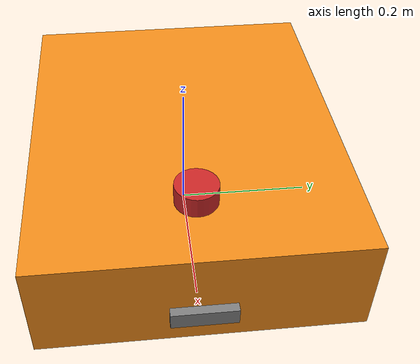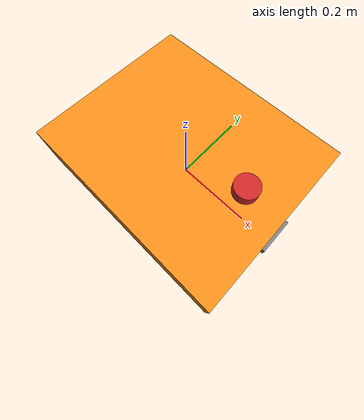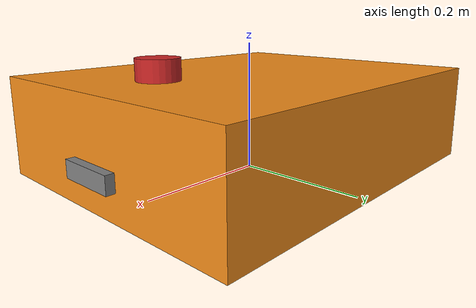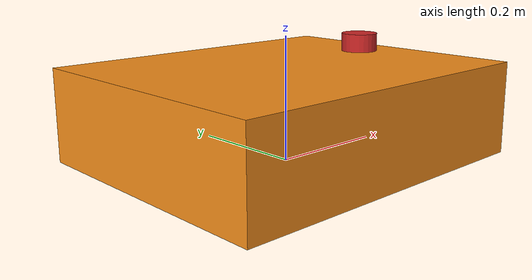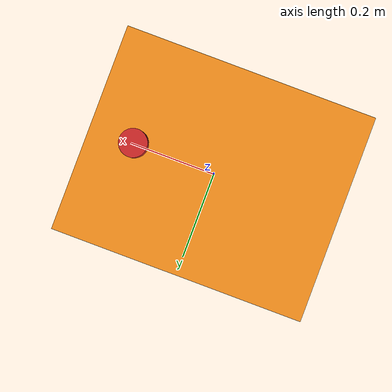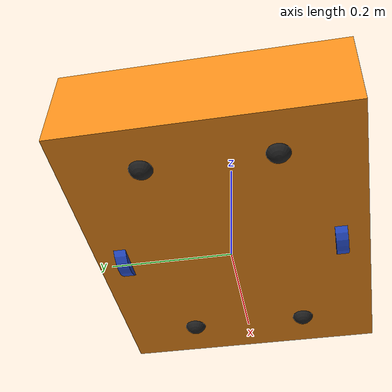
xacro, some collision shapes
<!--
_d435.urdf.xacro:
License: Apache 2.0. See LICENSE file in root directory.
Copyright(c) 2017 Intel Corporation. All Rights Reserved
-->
<?xml version="1.0"?>
<robot xmlns:xacro="http://www.ros.org/wiki/xacro" name="mobile_robot" >

  <xacro:arg name="use_nominal_extrinsics" default="false"/>
  <xacro:arg name="add_plug" default="false" />
  <xacro:arg name="use_mesh" default="true" />

  <!-- Import Rviz colors -->
  <xacro:include filename="$(find controller)/xacro/materials.xacro" />

  <!-- Robot Body -->
  <xacro:include filename="$(find controller)/xacro/model/robot_body.xacro"/>
  <xacro:robot_body name="chassis" parent="base_link" meshes="package://gazebo_plugins/test/controller/meshes/model"/>

  <!-- Laser -->
  <xacro:include filename="$(find controller)/xacro/laser/hokuyo.xacro"/>
  <xacro:laser name="laser" parent="base_link" xyz="0.175 0 0.175" rpy="0 0 -1.122" meshes="package://gazebo_plugins/test/drl/meshes/laser"/>

</robot>

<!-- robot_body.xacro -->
<robot xmlns:xacro="http://www.ros.org/wiki/xacro">

  <xacro:include filename="inertia_tensors.xacro"/>
  <xacro:include filename="robot_chassis.xacro"/>

  <xacro:include filename="robot_wheel_left.xacro"/>
  <xacro:include filename="robot_wheel_right.xacro"/>
  <xacro:include filename="robot_swivel.xacro"/>

  <xacro:include filename="_d435.urdf.xacro"/>
  <xacro:include filename="robot_plugins.xacro"/>

  <xacro:macro name="robot_body" params="name parent meshes">

    <!-- base_link -->
    <link name="${parent}"/>

    <!-- Chassis -->
    <xacro:base_chassis name="${name}" parent="base_link" xyz="0 0 0" rpy="0 0 0"  meshes="${meshes}"/>

    <!-- Wheels -->
    <xacro:base_wheel_left parent="${name}"  xyz="0  0.15 0.09" rpy="0 0 0" radius="0.09" meshes="${meshes}"/>
    <xacro:base_wheel_right  parent="${name}"  xyz="0 -0.15 0.09" rpy="0 0 0" radius="0.09" meshes="${meshes}"/>
    <xacro:base_swivel parent="${name}"  xyz="-0.185 0 0.055" rpy="0 0 0" meshes="${meshes}"/>

    <!-- Depth Camera -->
    <xacro:sensor_d435 name="camera" topics_ns="camera" parent="base_link" >
      <origin xyz="0.275 0 0.045" rpy="0 0 0" />
    </xacro:sensor_d435>
    <!-- Motor plugin -->
    <xacro:robot_diff_drive />

    <!-- Joints plugin -->
    <xacro:robot_joints_state_publisher />

  </xacro:macro>
</robot>

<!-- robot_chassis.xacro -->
<robot xmlns:xacro="http://ros.org/wiki/xacro">
  <property name="M_PI" value="3.1415926535897931" />
  <xacro:include filename="inertial_macros.xacro"/>

  <xacro:property name="half_pi_const" value="1.5707963" />
<xacro:property name="body_link_x_dim" value="0.55" />
<xacro:property name="body_link_y_dim" value="0.45" />
<xacro:property name="body_link_z_dim" value="0.09" />
  <xacro:macro name="base_chassis" params="name parent xyz rpy meshes">

  <!-- Chassis -->
  <joint name="${parent}_${name}_joint" type="fixed">
    <origin xyz="0.0 0 0" />
    <parent link="${parent}"/>
    <child link="chassis"/>
  </joint>

<link name="chassis">
    <visual>
        <origin xyz="0.0 0 0.08" rpy="0 0 0"/>
        <geometry>
            <box size="0.55 0.45 0.15"/>
        </geometry>
          <material name="orange"/>
    </visual>
    <collision>
        <origin xyz="0.0 0 0.08" rpy="0 0 0"/>
        <geometry>
            <box size="0.55 0.45 0.15"/>
        </geometry>
    </collision>
    <xacro:inertial_box mass="15" x="0.55" y="0.45" z="0.15">
        <origin xyz="0.0 0 0.08" rpy="0 0 0"/>
    </xacro:inertial_box>
</link>

    <gazebo reference="chassis">
        <material>Gazebo/Orange</material>
    </gazebo>
  </xacro:macro>

</robot>

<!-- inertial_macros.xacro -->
<robot xmlns:xacro="http://www.ros.org/wiki/xacro" >

    <!-- Specify some standard inertial calculations https://en.wikipedia.org/wiki/List_of_moments_of_inertia -->
    <!-- These make use of xacro's mathematical functionality -->

    <xacro:macro name="inertial_sphere" params="mass radius *origin">
        <inertial>
            <xacro:insert_block name="origin"/>
            <mass value="${mass}" />
            <inertia ixx="${(2/5) * mass * (radius*radius)}" ixy="0.0" ixz="0.0"
                    iyy="${(2/5) * mass * (radius*radius)}" iyz="0.0"
                    izz="${(2/5) * mass * (radius*radius)}" />
        </inertial>
    </xacro:macro>

    <xacro:macro name="inertial_box" params="mass x y z *origin">
        <inertial>
            <xacro:insert_block name="origin"/>
            <mass value="${mass}" />
            <inertia ixx="${(1/12) * mass * (y*y+z*z)}" ixy="0.0" ixz="0.0"
                    iyy="${(1/12) * mass * (x*x+z*z)}" iyz="0.0"
                    izz="${(1/12) * mass * (x*x+y*y)}" />
        </inertial>
    </xacro:macro>

    <xacro:macro name="inertial_cylinder" params="mass length radius *origin">
        <inertial>
            <xacro:insert_block name="origin"/>
            <mass value="${mass}" />
            <inertia ixx="${(1/12) * mass * (3*radius*radius + length*length)}" ixy="0.0" ixz="0.0"
                    iyy="${(1/12) * mass * (3*radius*radius + length*length)}" iyz="0.0"
                    izz="${(1/2) * mass * (radius*radius)}" />
        </inertial>
    </xacro:macro>

</robot>

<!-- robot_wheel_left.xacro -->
<robot
  xmlns:xacro="http://ros.org/wiki/xacro">
  <property name="M_PI" value="3.1415926535897931" />
  <xacro:property name="wheel_link_radius" value="0.05" />
  <xacro:property name="wheel_link_length" value="0.02" />
  <xacro:property name="wheel_link_x_location" value="0.12" />
  <xacro:property name="sphere_radius" value="0.02" />
  <xacro:property name="sphere_joint_y" value="-0.15" />
  <xacro:property name="z_sphere" value="-0.017" />

  <xacro:property name="pi_const" value="3.1415926535898" />
  <xacro:property name="half_pi_const" value="1.5707963" />
  <xacro:property name="chassis_mass" value="10.0"/>
<xacro:property name="wheel_mass" value="0.2"/>
<xacro:property name="caster_wheel_mass" value="0.01"/>
 <xacro:include filename="inertial_macros.xacro"/>

  <xacro:macro name="base_wheel_left" params=" parent xyz rpy radius meshes">
  <!-- Hubcap -->

<joint name="left_wheel_joint" type="continuous">
    <parent link="base_link"/>
    <child link="left_wheel"/>
    <origin xyz="0 0.18 0.0415" rpy="-${pi/2} 0 0"/>
    <axis xyz="0 0 1"/>
</joint>

<link name="left_wheel">
    <visual>
        <geometry>
            <cylinder length="0.02" radius="0.05" />
        </geometry>
        <material name="blue"/>
    </visual>
	<collision>
		<geometry>
            <cylinder length="0.02" radius="0.05" />
        </geometry>
        <material name="blue"/>
	</collision>
    <xacro:inertial_cylinder mass="0.1" length="0.02" radius="0.05">
        <origin xyz="0 0 0" rpy="0 0 0"/>
    </xacro:inertial_cylinder>
</link>
    <gazebo reference="left_wheel">
        <material>Gazebo/Blue</material>
    </gazebo>
  </xacro:macro>

</robot>

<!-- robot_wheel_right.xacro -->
<robot
  xmlns:xacro="http://ros.org/wiki/xacro">
  <property name="M_PI" value="3.1415926535897931" />
  <xacro:include filename="inertial_macros.xacro"/>
  <xacro:property name="wheel_link_radius" value="0.05" />
  <xacro:property name="wheel_link_length" value="0.02" />
  <xacro:property name="wheel_link_x_location" value="0.12" />
  <xacro:property name="sphere_radius" value="0.02" />
  <xacro:property name="sphere_joint_y" value="-0.15" />
  <xacro:property name="z_sphere" value="-0.017" />
  <xacro:property name="pi_const" value="3.1415926535898" />
  <xacro:property name="half_pi_const" value="1.5707963" />
<xacro:property name="chassis_mass" value="10.0"/>
<xacro:property name="wheel_mass" value="0.2"/>
<xacro:property name="caster_wheel_mass" value="0.01"/>

  <xacro:macro name="base_wheel_right" params=" parent xyz rpy radius meshes">

  <!-- Hubcap -->
<joint name="right_wheel_joint" type="continuous">
    <parent link="base_link"/>
    <child link="right_wheel"/>
    <origin xyz="0 -0.18 0.0415" rpy="${pi/2} 0 0"/>
    <axis xyz="0 0 -1"/>
</joint>

  <link name="right_wheel">
    <visual>
        <geometry>
            <cylinder length="0.02" radius="0.05" />
        </geometry>
        <material name="blue"/>
    </visual>
	<collision>
		<geometry>
            <cylinder length="0.02" radius="0.05" />
        </geometry>
        <material name="blue"/>
	</collision>
    <xacro:inertial_cylinder mass="0.1" length="0.02" radius="0.05">
        <origin xyz="0 0 0" rpy="0 0 0"/>
    </xacro:inertial_cylinder>
</link>
    <gazebo reference="right_wheel">
        <material>Gazebo/Blue</material>
    </gazebo>

  </xacro:macro>

</robot>

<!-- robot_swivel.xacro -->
<robot xmlns:xacro="http://ros.org/wiki/xacro">
  <property name="M_PI" value="3.1415926535897931" />

  <xacro:macro name="base_swivel" params="parent xyz rpy meshes">
<xacro:property name="sphere_radius_2" value="0.02" />
<xacro:property name="sphere_joint_y_2" value="0.15" />
<xacro:property name="z_sphere_2" value="-0.01" />

<xacro:property name="chassis_mass" value="10.0"/>
<xacro:property name="wheel_mass" value="0.2"/>
<xacro:property name="caster_wheel_mass" value="0.01"/>

<xacro:property name="sphere_radius" value="0.02" />
<xacro:property name="sphere_joint_y" value="-0.15" />
<xacro:property name="z_sphere" value="-0.01" />

<xacro:property name="pi_const" value="3.1415926535898" />
<xacro:property name="half_pi_const" value="1.5707963" />
<joint name="caster_wheel_joint" type="fixed">
    <parent link="chassis"/>
    <child link="caster_wheel"/>
    <origin xyz="0.2 -0.1 0.0125" rpy="0 0 0"/>
</joint>

<link name="caster_wheel">
    <visual>
        <geometry>
            <sphere radius="0.02" />
        </geometry>
        <material name="black"/>
    </visual>
	<collision>
        <geometry>
            <sphere radius="0.02" />
        </geometry>
        <material name="black"/>
    </collision>
    <xacro:inertial_sphere mass="0.1" radius="0.02">
        <origin xyz="0 0 0" rpy="0 0 0"/>
    </xacro:inertial_sphere>
</link>
<gazebo reference="caster_wheel">
    <material>Gazebo/Black</material>
    <mu1 value="0.001"/>
    <mu2 value="0.001"/>
</gazebo>

<joint name="caster_wheel_joint2" type="fixed">
    <parent link="chassis"/>
    <child link="caster_wheel2"/>
    <origin xyz="0.2 0.1 0.0125" rpy="0 0 0"/>
</joint>

<link name="caster_wheel2">
    <visual>
        <geometry>
            <sphere radius="0.02" />
        </geometry>
        <material name="black"/>
    </visual>
	<collision>
        <geometry>
            <sphere radius="0.02" />
        </geometry>
        <material name="black"/>
    </collision>
    <xacro:inertial_sphere mass="0.1" radius="0.02">
        <origin xyz="0 0 0" rpy="0 0 0"/>
    </xacro:inertial_sphere>
</link>
<gazebo reference="caster_wheel2">
    <material>Gazebo/Black</material>
    <mu1 value="0.001"/>
    <mu2 value="0.001"/>
</gazebo>

<joint name="caster_wheel_joint1" type="fixed">
    <parent link="chassis"/>
    <child link="caster_wheel1"/>
    <origin xyz="-0.2 -0.1 0.0125" rpy="0 0 0"/>
</joint>

<link name="caster_wheel1">
    <visual>
        <geometry>
            <sphere radius="0.02" />
        </geometry>
        <material name="black"/>
    </visual>
	<collision>
        <geometry>
            <sphere radius="0.02" />
        </geometry>
        <material name="black"/>
    </collision>
    <xacro:inertial_sphere mass="0.1" radius="0.02">
        <origin xyz="0 0 0" rpy="0 0 0"/>
    </xacro:inertial_sphere>
</link>
<gazebo reference="caster_wheel1">
    <material>Gazebo/Black</material>
    <mu1 value="0.001"/>
    <mu2 value="0.001"/>
</gazebo>

<joint name="caster_wheel_joint3" type="fixed">
    <parent link="chassis"/>
    <child link="caster_wheel3"/>
    <origin xyz="-0.2 0.1 0.0125" rpy="0 0 0"/>
</joint>

<link name="caster_wheel3">
    <visual>
        <geometry>
            <sphere radius="0.02" />
        </geometry>
        <material name="black"/>
    </visual>
	<collision>
        <geometry>
            <sphere radius="0.02" />
        </geometry>
        <material name="black"/>
    </collision>
    <xacro:inertial_sphere mass="0.1" radius="0.02">
        <origin xyz="0 0 0" rpy="0 0 0"/>
    </xacro:inertial_sphere>
</link>
<gazebo reference="caster_wheel3">
    <material>Gazebo/Black</material>
    <mu1 value="0.001"/>
    <mu2 value="0.001"/>
</gazebo>

  </xacro:macro>

</robot>

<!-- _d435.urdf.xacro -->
<robot name="sensor_d435" xmlns:xacro="http://ros.org/wiki/xacro">

  <xacro:macro name="sensor_d435" params="parent
                                          name:=camera
                                          topics_ns:=camera
                                          align_depth:=true
                                          enable_pointCloud:=true

                                          clip_distance:=-1.0
                                          depth_width:=1280
                                          depth_height:=720
                                          depth_fps:=30

                                          infra_width:=640
                                          infra_height:=480
                                          infra_fps:=30

                                          color_width:=1920
                                          color_height:=1080
                                          color_fps:=30

                                          visualize:=false
                                          *origin">
    <xacro:property name="M_PI" value="3.1415926535897931"/>

    <!-- The following values are approximate, and the camera node
     publishing TF values with actual calibrated camera extrinsic values -->
    <xacro:property name="d435_cam_depth_to_left_ir_offset" value="0.0"/>
    <xacro:property name="d435_cam_depth_to_right_ir_offset" value="-0.050"/>
    <xacro:property name="d435_cam_depth_to_color_offset" value="0.015"/>

    <!-- The following values model the aluminum peripherial case for the
  	D435 camera, with the camera joint represented by the actual
  	peripherial camera tripod mount -->
    <xacro:property name="d435_cam_width" value="0.090"/>
    <xacro:property name="d435_cam_height" value="0.025"/>
    <xacro:property name="d435_cam_depth" value="0.02505"/>
    <xacro:property name="d435_cam_mount_from_center_offset" value="0.0149"/>

    <!-- The following offset is relative the the physical D435 camera peripherial
  	camera tripod mount -->
    <xacro:property name="d435_cam_depth_px" value="${d435_cam_mount_from_center_offset}"/>
    <xacro:property name="d435_cam_depth_py" value="0.0175"/>
    <xacro:property name="d435_cam_depth_pz" value="${d435_cam_height/2}"/>

    <material name="${name}_aluminum">
	  <color rgba="0.5 0.5 0.5 1"/>
    </material>

    <!-- camera body, with origin at bottom screw mount -->
    <joint name="${name}_joint" type="fixed">
      <xacro:insert_block name="origin"/>
      <parent link="${parent}"/>
      <child link="${name}_bottom_screw_frame"/>
    </joint>
    <link name="${name}_bottom_screw_frame"/>

    <joint name="${name}_link_joint" type="fixed">
      <origin xyz="0 ${d435_cam_depth_py} ${d435_cam_depth_pz}" rpy="0 0 0"/>
      <parent link="${name}_bottom_screw_frame"/>
      <child link="${name}_link"/>
    </joint>

    <link name="${name}_link">
      <visual>
      <origin xyz="${d435_cam_mount_from_center_offset} ${-d435_cam_depth_py} 0" rpy="${M_PI/2} 0 ${M_PI/2}"/>
        <geometry>
          <mesh filename="package://realsense2_description/meshes/d435.dae"/>
        </geometry>
        <material name="${name}_aluminum"/>
      </visual>
      <collision>
        <origin xyz="0 ${-d435_cam_depth_py} 0" rpy="0 0 0"/>
        <geometry>
        <box size="${d435_cam_depth} ${d435_cam_width} ${d435_cam_height}"/>
        </geometry>
      </collision>
      <inertial>
        <!-- The following are not reliable values, and should not be used for modeling -->
        <mass value="0.564"/>
        <origin xyz="0 0 0"/>
        <inertia ixx="0.003881243" ixy="0.0" ixz="0.0" iyy="0.000498940" iyz="0.0" izz="0.003879257"/>
      </inertial>
    </link>

    <!-- camera depth joints and links -->
    <joint name="${name}_depth_joint" type="fixed">
      <origin xyz="0 0 0" rpy="0 0 0"/>
      <parent link="${name}_link"/>
      <child link="${name}_depth_frame"/>
    </joint>
    <link name="${name}_depth_frame"/>

    <joint name="${name}_depth_optical_joint" type="fixed">
      <origin xyz="0 0 0" rpy="${-M_PI/2} 0 ${-M_PI/2}"/>
      <parent link="${name}_depth_frame"/>
      <child link="${name}_depth_optical_frame"/>
    </joint>
    <link name="${name}_depth_optical_frame"/>

    <!-- camera left IR joints and links -->
    <joint name="${name}_left_ir_joint" type="fixed">
      <origin xyz="0 ${d435_cam_depth_to_left_ir_offset} 0" rpy="0 0 0"/>
      <parent link="${name}_depth_frame"/>
      <child link="${name}_left_ir_frame"/>
    </joint>
    <link name="${name}_left_ir_frame"/>

    <joint name="${name}_left_ir_optical_joint" type="fixed">
      <origin xyz="0 0 0" rpy="${-M_PI/2} 0 ${-M_PI/2}"/>
      <parent link="${name}_left_ir_frame"/>
      <child link="${name}_left_ir_optical_frame"/>
    </joint>
    <link name="${name}_left_ir_optical_frame"/>

    <!-- camera right IR joints and links -->
    <joint name="${name}_right_ir_joint" type="fixed">
      <origin xyz="0 ${d435_cam_depth_to_right_ir_offset} 0" rpy="0 0 0"/>
      <parent link="${name}_depth_frame"/>
      <child link="${name}_right_ir_frame"/>
    </joint>
    <link name="${name}_right_ir_frame"/>

    <joint name="${name}_right_ir_optical_joint" type="fixed">
      <origin xyz="0 0 0" rpy="${-M_PI/2} 0 ${-M_PI/2}"/>
      <parent link="${name}_right_ir_frame"/>
      <child link="${name}_right_ir_optical_frame"/>
    </joint>
    <link name="${name}_right_ir_optical_frame"/>

    <!-- camera color joints and links -->
    <joint name="${name}_color_joint" type="fixed">
      <origin xyz="0 ${d435_cam_depth_to_color_offset} 0" rpy="0 0 0"/>
      <parent link="${name}_depth_frame"/>
      <child link="${name}_color_frame"/>
    </joint>
    <link name="${name}_color_frame"/>

    <joint name="${name}_color_optical_joint" type="fixed">
      <origin xyz="0 0 0" rpy="${-M_PI/2} 0 ${-M_PI/2}"/>
      <parent link="${name}_color_frame"/>
      <child link="${name}_color_optical_frame"/>
    </joint>
    <link name="${name}_color_optical_frame"/>
  </xacro:macro>
</robot>

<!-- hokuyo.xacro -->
<robot xmlns:xacro="http://www.ros.org/wiki/xacro">

<!-- Front Laser -->
<xacro:macro name="laser" params="name parent xyz rpy meshes" >

  <joint name="${parent}_${name}_joint" type="fixed">
      <axis xyz="0 0 1" />
      <origin xyz="${xyz}" rpy="${rpy}"/>
      <parent link="${parent}"/>
      <child link="${name}"/>
    </joint>

    <link name="${name}">
      <collision>
        <origin xyz="0 0 0" rpy="0 0 0"/>
        <geometry>
          <box size="0.1 0.1 0.1"/>
        </geometry>
      </collision>
      <visual>
        <origin xyz="0 0 0" rpy="0 0 0"/>
        <geometry>
          <cylinder radius="0.03" length="0.03"/>
        </geometry>
        <material name="red"/>
      </visual>
      <inertial>
        <mass value="1e-5" />
        <origin xyz="0 0 0" rpy="0 0 0"/>
        <inertia ixx="1e-6" ixy="0" ixz="0" iyy="1e-6" iyz="0" izz="1e-6" />
      </inertial>
    </link>

    <gazebo reference="${name}">
        <sensor name="laser" type="ray">
        <pose>0 0 0 0 0 0</pose>
          <ray>
            <scan>
              <horizontal>
                <!-- The URG-04LX-UG01  has  683 steps with 0.35139 Degree resolution -->
                <resolution>1</resolution>
                <max_angle>1.5707</max_angle> <!--2.0944 120 Degree -->
                <min_angle>-1.5707</min_angle> <!-- -120 Degree -->
                <samples>360</samples>
              </horizontal>
            </scan>
            <range>
              <min>0.08</min>
              <max>10</max>
              <resolution>0.01</resolution>
            </range>
          </ray>

          <plugin name="laser" filename="libgazebo_ros_laser.so" >
            <robotNamespace></robotNamespace>
            <topicName>${name}/scan</topicName>
            <frameName>${name}</frameName>
          </plugin>

          <always_on>1</always_on>
          <update_rate>100</update_rate>
          <visualize>true</visualize>
        </sensor>
    </gazebo>
</xacro:macro>

</robot>
